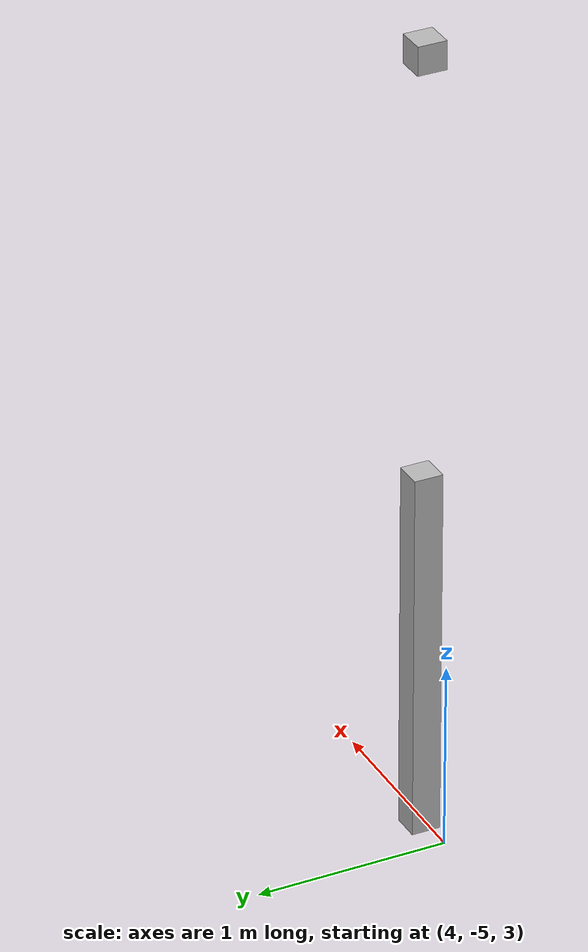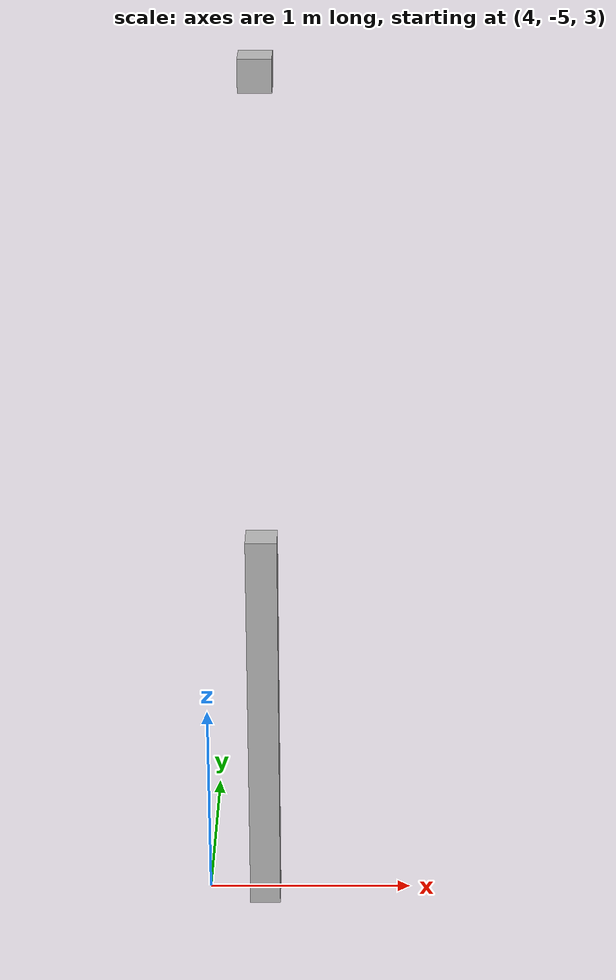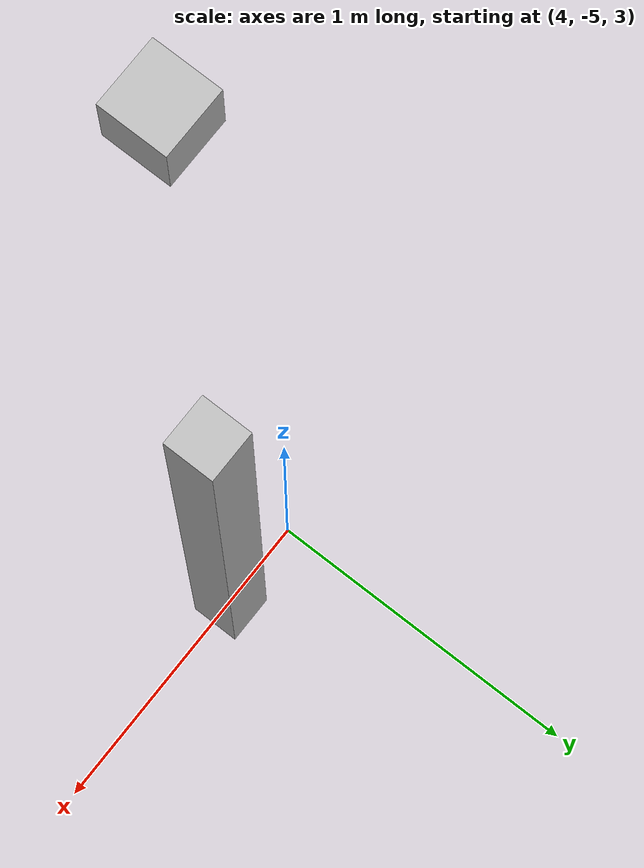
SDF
<sdf version="1.7">
 <world name="default">
  <model name="orthogonal_747_2.000.15_TS">
   <static>1</static>
   <link name="z_link_3_0_5">
    <inertial>
     <mass>1</mass>
     <inertia>
      <ixx>0.166667</ixx>
      <ixy>0</ixy>
      <ixz>0</ixz>
      <iyy>0.166667</iyy>
      <iyz>0</iyz>
      <izz>0.166667</izz>
     </inertia>
    </inertial>
    <pose>10.75 0 6.45 0 -0 0</pose>
    <visual name="visual_0">
     <laser_retro>2717</laser_retro>
     <geometry><box><size>0.15 1e-06 2</size></box></geometry>
     <material>
      <script><name>Gazebo/Grey</name><uri>file://media/materials/scripts/gazebo.material</uri></script>
      <shader type="pixel"><normal_map>__default__</normal_map></shader>
      <ambient>0.678 0.498 0.659 1</ambient>
      <diffuse>0.7 0.7 0.7 1</diffuse>
      <specular>0.01 0.01 0.01 1</specular>
      <emissive>0 0 0 1</emissive>
     </material>
     <pose>0 -0.075 0 0 -0 0</pose>
     <transparency>1</transparency>
    </visual>
    <visual name="visual_1">
     <laser_retro>2718</laser_retro>
     <geometry><box><size>0.15 1e-06 2</size></box></geometry>
     <material>
      <script><name>Gazebo/Grey</name><uri>file://media/materials/scripts/gazebo.material</uri></script>
      <shader type="pixel"><normal_map>__default__</normal_map></shader>
      <ambient>0.447 0.624 0.812 1</ambient>
      <diffuse>0.7 0.7 0.7 1</diffuse>
      <specular>0.01 0.01 0.01 1</specular>
      <emissive>0 0 0 1</emissive>
     </material>
     <pose>0 0.075 0 0 -0 0</pose>
     <transparency>1</transparency>
    </visual>
    <visual name="visual_2">
     <laser_retro>2719</laser_retro>
     <geometry><box><size>0.15 0.15 1e-06</size></box></geometry>
     <material>
      <script><name>Gazebo/Grey</name><uri>file://media/materials/scripts/gazebo.material</uri></script>
      <shader type="pixel"><normal_map>__default__</normal_map></shader>
      <ambient>0.988 0.686 0.243 1</ambient>
      <diffuse>0.7 0.7 0.7 1</diffuse>
      <specular>0.01 0.01 0.01 1</specular>
      <emissive>0 0 0 1</emissive>
     </material>
     <pose>0 0 -1 0 -0 0</pose>
     <transparency>1</transparency>
    </visual>
    <visual name="visual_3">
     <laser_retro>2720</laser_retro>
     <geometry><box><size>1e-06 0.15 2</size></box></geometry>
     <material>
      <script><name>Gazebo/Grey</name><uri>file://media/materials/scripts/gazebo.material</uri></script>
      <shader type="pixel"><normal_map>__default__</normal_map></shader>
      <ambient>0.988 0.914 0.31 1</ambient>
      <diffuse>0.7 0.7 0.7 1</diffuse>
      <specular>0.01 0.01 0.01 1</specular>
      <emissive>0 0 0 1</emissive>
     </material>
     <pose>0.075 0 0 0 -0 0</pose>
     <transparency>1</transparency>
    </visual>
    <visual name="visual_4">
     <laser_retro>2721</laser_retro>
     <geometry><box><size>0.15 0.15 1e-06</size></box></geometry>
     <material>
      <script><name>Gazebo/Grey</name><uri>file://media/materials/scripts/gazebo.material</uri></script>
      <shader type="pixel"><normal_map>__default__</normal_map></shader>
      <ambient>0.937 0.161 0.161 1</ambient>
      <diffuse>0.7 0.7 0.7 1</diffuse>
      <specular>0.01 0.01 0.01 1</specular>
      <emissive>0 0 0 1</emissive>
     </material>
     <pose>0 0 1 0 -0 0</pose>
     <transparency>1</transparency>
    </visual>
    <visual name="visual_5">
     <laser_retro>2722</laser_retro>
     <geometry><box><size>1e-06 0.15 2</size></box></geometry>
     <material>
      <script><name>Gazebo/Grey</name><uri>file://media/materials/scripts/gazebo.material</uri></script>
      <shader type="pixel"><normal_map>__default__</normal_map></shader>
      <ambient>0.541 0.886 0.204 1</ambient>
      <diffuse>0.7 0.7 0.7 1</diffuse>
      <specular>0.01 0.01 0.01 1</specular>
      <emissive>0 0 0 1</emissive>
     </material>
     <pose>-0.075 0 0 0 -0 0</pose>
     <transparency>1</transparency>
    </visual>
    <visual name="visual_texture">
     <geometry><box><size>0.149985 0.149985 1.9998</size></box></geometry>
     <material>
      <script>
       <uri>model://BASE_MODELS/simple_block_v2_textured/materials/scripts</uri>
       <uri>model://BASE_MODELS/simple_block_v2_textured/materials/textures</uri>
       <name>metal</name>
      </script>
     </material>
     <laser_retro>2723</laser_retro>
    </visual>
    <collision name="collision">
     <geometry><box><size>0.15 0.15 2</size></box></geometry>
     <surface>
      <friction>
       <ode><mu>1</mu><mu2>1</mu2><fdir1>0 0 0</fdir1><slip1>0</slip1><slip2>0</slip2></ode>
       <torsional>
        <coefficient>1</coefficient>
        <patch_radius>0</patch_radius>
        <surface_radius>0</surface_radius>
        <use_patch_radius>1</use_patch_radius>
        <ode><slip>0</slip></ode>
       </torsional>
      </friction>
      <bounce><restitution_coefficient>0</restitution_coefficient><threshold>1e+06</threshold></bounce>
      <contact>
       <collide_without_contact>0</collide_without_contact>
       <collide_without_contact_bitmask>1</collide_without_contact_bitmask>
       <collide_bitmask>1</collide_bitmask>
       <ode>
        <soft_cfm>0</soft_cfm>
        <soft_erp>0.2</soft_erp>
        <kp>1e+13</kp>
        <kd>1</kd>
        <max_vel>0.01</max_vel>
        <min_depth>0</min_depth>
       </ode>
       <bullet>
        <split_impulse>1</split_impulse>
        <split_impulse_penetration_threshold>-0.01</split_impulse_penetration_threshold>
        <soft_cfm>0</soft_cfm>
        <soft_erp>0.2</soft_erp>
        <kp>1e+13</kp>
        <kd>1</kd>
       </bullet>
      </contact>
     </surface>
    </collision>
   </link>
   <link name="u_link_4_0_5">
    <inertial>
     <mass>1</mass>
     <inertia>
      <ixx>0.166667</ixx>
      <ixy>0</ixy>
      <ixz>0</ixz>
      <iyy>0.166667</iyy>
      <iyz>0</iyz>
      <izz>0.166667</izz>
     </inertia>
    </inertial>
    <pose>10.75 0 9.675 0 -0 0</pose>
    <visual name="visual_0">
     <laser_retro>3613</laser_retro>
     <geometry><box><size>0.15 1e-06 0.15</size></box></geometry>
     <material>
      <script><name>Gazebo/Grey</name><uri>file://media/materials/scripts/gazebo.material</uri></script>
      <shader type="pixel"><normal_map>__default__</normal_map></shader>
      <ambient>0.678 0.498 0.659 1</ambient>
      <diffuse>0.7 0.7 0.7 1</diffuse>
      <specular>0.01 0.01 0.01 1</specular>
      <emissive>0 0 0 1</emissive>
     </material>
     <pose>0 -0.075 0 0 -0 0</pose>
     <transparency>1</transparency>
    </visual>
    <visual name="visual_1">
     <laser_retro>3614</laser_retro>
     <geometry><box><size>0.15 1e-06 0.15</size></box></geometry>
     <material>
      <script><name>Gazebo/Grey</name><uri>file://media/materials/scripts/gazebo.material</uri></script>
      <shader type="pixel"><normal_map>__default__</normal_map></shader>
      <ambient>0.447 0.624 0.812 1</ambient>
      <diffuse>0.7 0.7 0.7 1</diffuse>
      <specular>0.01 0.01 0.01 1</specular>
      <emissive>0 0 0 1</emissive>
     </material>
     <pose>0 0.075 0 0 -0 0</pose>
     <transparency>1</transparency>
    </visual>
    <visual name="visual_2">
     <laser_retro>3615</laser_retro>
     <geometry><box><size>0.15 0.15 1e-06</size></box></geometry>
     <material>
      <script><name>Gazebo/Grey</name><uri>file://media/materials/scripts/gazebo.material</uri></script>
      <shader type="pixel"><normal_map>__default__</normal_map></shader>
      <ambient>0.988 0.686 0.243 1</ambient>
      <diffuse>0.7 0.7 0.7 1</diffuse>
      <specular>0.01 0.01 0.01 1</specular>
      <emissive>0 0 0 1</emissive>
     </material>
     <pose>0 0 -0.075 0 -0 0</pose>
     <transparency>1</transparency>
    </visual>
    <visual name="visual_3">
     <laser_retro>3616</laser_retro>
     <geometry><box><size>1e-06 0.15 0.15</size></box></geometry>
     <material>
      <script><name>Gazebo/Grey</name><uri>file://media/materials/scripts/gazebo.material</uri></script>
      <shader type="pixel"><normal_map>__default__</normal_map></shader>
      <ambient>0.988 0.914 0.31 1</ambient>
      <diffuse>0.7 0.7 0.7 1</diffuse>
      <specular>0.01 0.01 0.01 1</specular>
      <emissive>0 0 0 1</emissive>
     </material>
     <pose>0.075 0 0 0 -0 0</pose>
     <transparency>1</transparency>
    </visual>
    <visual name="visual_4">
     <laser_retro>3617</laser_retro>
     <geometry><box><size>0.15 0.15 1e-06</size></box></geometry>
     <material>
      <script><name>Gazebo/Grey</name><uri>file://media/materials/scripts/gazebo.material</uri></script>
      <shader type="pixel"><normal_map>__default__</normal_map></shader>
      <ambient>0.937 0.161 0.161 1</ambient>
      <diffuse>0.7 0.7 0.7 1</diffuse>
      <specular>0.01 0.01 0.01 1</specular>
      <emissive>0 0 0 1</emissive>
     </material>
     <pose>0 0 0.075 0 -0 0</pose>
     <transparency>1</transparency>
    </visual>
    <visual name="visual_5">
     <laser_retro>3618</laser_retro>
     <geometry><box><size>1e-06 0.15 0.15</size></box></geometry>
     <material>
      <script><name>Gazebo/Grey</name><uri>file://media/materials/scripts/gazebo.material</uri></script>
      <shader type="pixel"><normal_map>__default__</normal_map></shader>
      <ambient>0.541 0.886 0.204 1</ambient>
      <diffuse>0.7 0.7 0.7 1</diffuse>
      <specular>0.01 0.01 0.01 1</specular>
      <emissive>0 0 0 1</emissive>
     </material>
     <pose>-0.075 0 0 0 -0 0</pose>
     <transparency>1</transparency>
    </visual>
    <visual name="visual_texture">
     <geometry><box><size>0.149985 0.149985 0.149985</size></box></geometry>
     <material>
      <script>
       <uri>model://BASE_MODELS/simple_block_v2_textured/materials/scripts</uri>
       <uri>model://BASE_MODELS/simple_block_v2_textured/materials/textures</uri>
       <name>metal</name>
      </script>
     </material>
     <laser_retro>3619</laser_retro>
    </visual>
    <collision name="collision">
     <geometry><box><size>0.15 0.15 0.15</size></box></geometry>
     <surface>
      <friction>
       <ode><mu>1</mu><mu2>1</mu2><fdir1>0 0 0</fdir1><slip1>0</slip1><slip2>0</slip2></ode>
       <torsional>
        <coefficient>1</coefficient>
        <patch_radius>0</patch_radius>
        <surface_radius>0</surface_radius>
        <use_patch_radius>1</use_patch_radius>
        <ode><slip>0</slip></ode>
       </torsional>
      </friction>
      <bounce><restitution_coefficient>0</restitution_coefficient><threshold>1e+06</threshold></bounce>
      <contact>
       <collide_without_contact>0</collide_without_contact>
       <collide_without_contact_bitmask>1</collide_without_contact_bitmask>
       <collide_bitmask>1</collide_bitmask>
       <ode>
        <soft_cfm>0</soft_cfm>
        <soft_erp>0.2</soft_erp>
        <kp>1e+13</kp>
        <kd>1</kd>
        <max_vel>0.01</max_vel>
        <min_depth>0</min_depth>
       </ode>
       <bullet>
        <split_impulse>1</split_impulse>
        <split_impulse_penetration_threshold>-0.01</split_impulse_penetration_threshold>
        <soft_cfm>0</soft_cfm>
        <soft_erp>0.2</soft_erp>
        <kp>1e+13</kp>
        <kd>1</kd>
       </bullet>
      </contact>
     </surface>
    </collision>
   </link>
   <pose>-6.47624 -5 -2.5 0 -0 0</pose>
  </model>
 </world>
</sdf>
